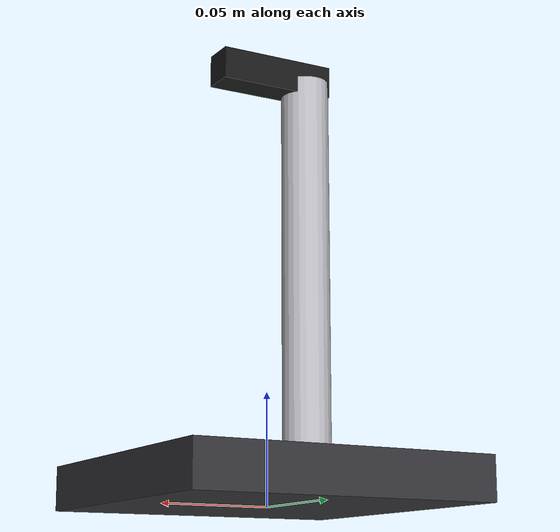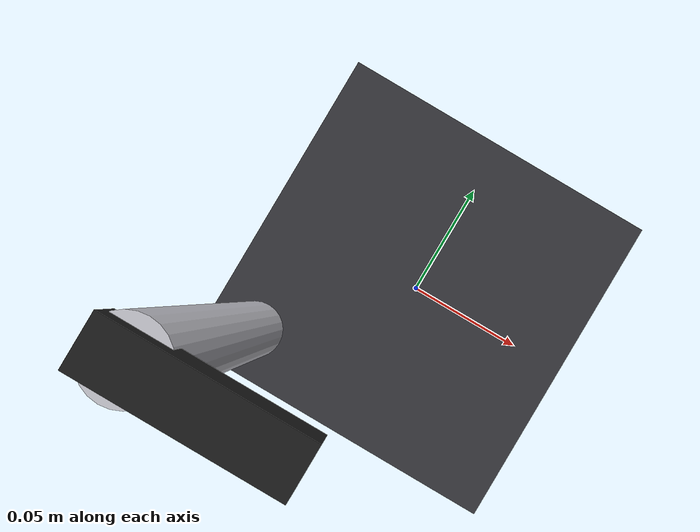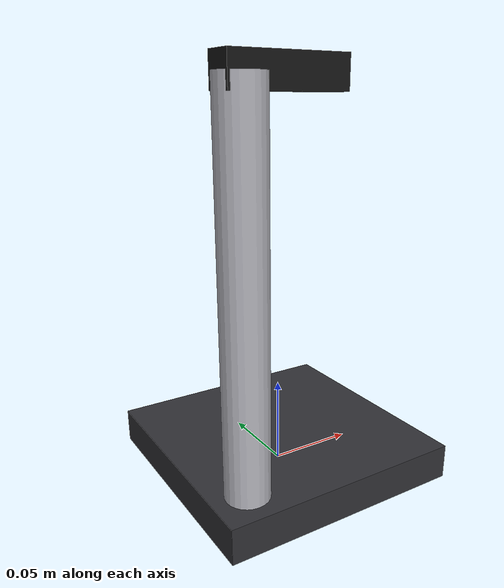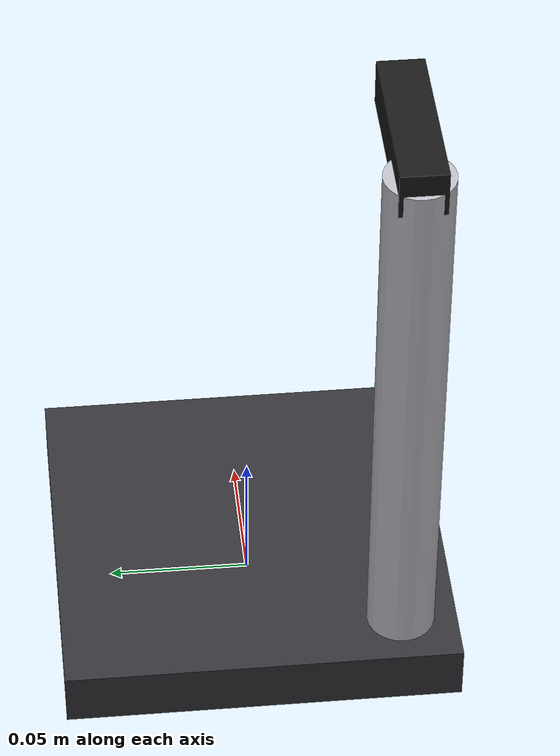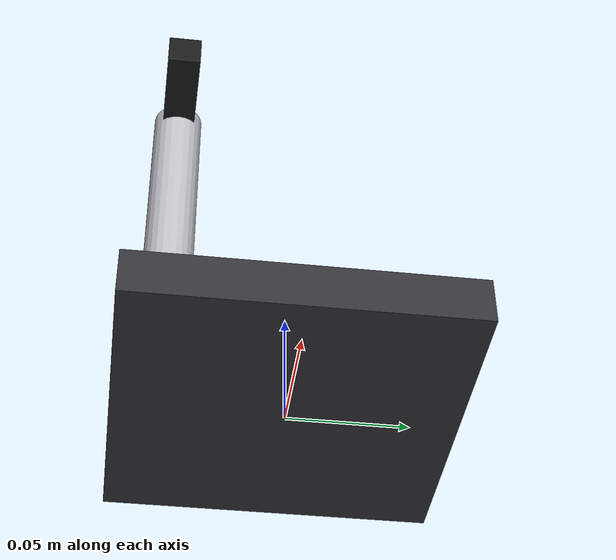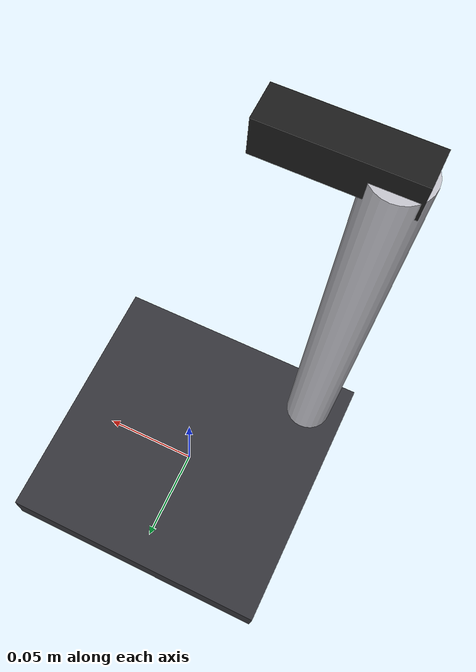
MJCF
<?xml version="1.0" encoding="utf-8"?>
<mujoco model="luminol_spray_station">
  <compiler angle="radian" autolimits="true"/>
  <default>
    <default class="body"><geom contype="1" conaffinity="1"/></default>
  </default>
  <worldbody>
    <body name="base">
      <geom type="box" size="0.07 0.07 0.01" pos="0 0 0.01" rgba="0.2 0.2 0.22 1" class="body"/>
      <geom type="cylinder" size="0.012 0.10" pos="-0.05 -0.05 0.12" rgba="0.75 0.75 0.78 1" class="body"/>
      <body name="sprayer_head" pos="-0.05 -0.05 0.22">
        <joint name="sprayer_head_joint" type="hinge" axis="0 1 0" range="-0.6 0.6" damping="0.2" frictionloss="0.3"/>
  <geom type="box" size="0.03 0.008 0.008" pos="0.02 0 0" rgba="0.1 0.1 0.1 1" class="body"/>
      </body>
    </body>
  </worldbody>
</mujoco>
